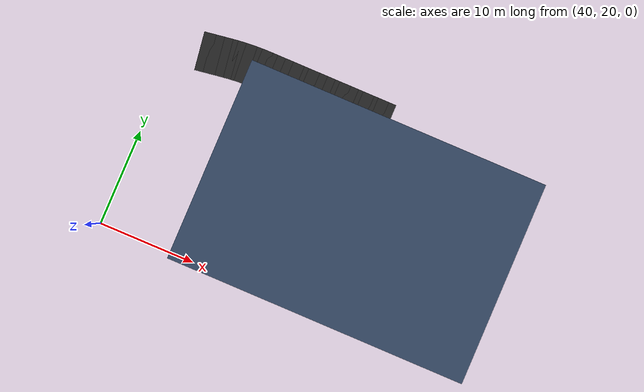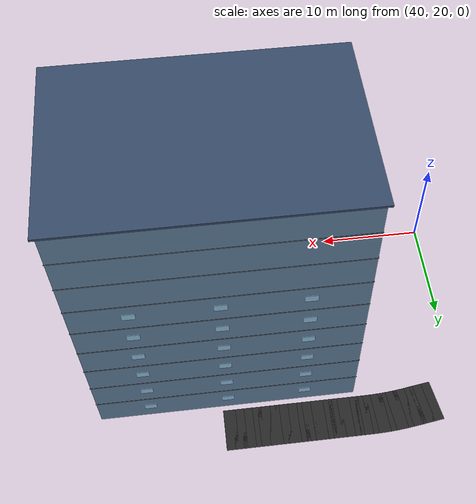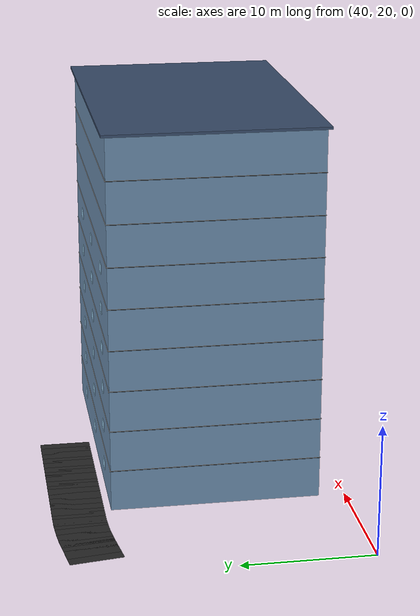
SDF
<sdf version="1.7">
 <world name="campus_delivery">
  <model name="campus_roads">
   <static>true</static>
   <link name="north_campus_loop_0102">
    <pose>62.000 40.500 0.002 0 0 3.141593</pose>
    <visual name="visual">
     <geometry><box><size>1.150 4.000 0.004</size></box></geometry>
     <material><ambient>0.160 0.160 0.160 1.000</ambient><diffuse>0.160 0.160 0.160 1.000</diffuse></material>
    </visual>
   </link>
   <link name="north_campus_loop_0103">
    <pose>61.200 40.500 0.002 0 0 3.141593</pose>
    <visual name="visual">
     <geometry><box><size>1.150 4.000 0.004</size></box></geometry>
     <material><ambient>0.160 0.160 0.160 1.000</ambient><diffuse>0.160 0.160 0.160 1.000</diffuse></material>
    </visual>
   </link>
   <link name="north_campus_loop_0104">
    <pose>60.400 40.500 0.002 0 0 3.141593</pose>
    <visual name="visual">
     <geometry><box><size>1.150 4.000 0.004</size></box></geometry>
     <material><ambient>0.160 0.160 0.160 1.000</ambient><diffuse>0.160 0.160 0.160 1.000</diffuse></material>
    </visual>
   </link>
   <link name="north_campus_loop_0105">
    <pose>59.577 40.500 0.002 0 0 3.141593</pose>
    <visual name="visual">
     <geometry><box><size>1.196 4.000 0.004</size></box></geometry>
     <material><ambient>0.160 0.160 0.160 1.000</ambient><diffuse>0.160 0.160 0.160 1.000</diffuse></material>
    </visual>
   </link>
   <link name="north_campus_loop_0106">
    <pose>58.731 40.500 0.002 0 0 3.141593</pose>
    <visual name="visual">
     <geometry><box><size>1.196 4.000 0.004</size></box></geometry>
     <material><ambient>0.160 0.160 0.160 1.000</ambient><diffuse>0.160 0.160 0.160 1.000</diffuse></material>
    </visual>
   </link>
   <link name="north_campus_loop_0107">
    <pose>57.885 40.500 0.002 0 0 3.141593</pose>
    <visual name="visual">
     <geometry><box><size>1.196 4.000 0.004</size></box></geometry>
     <material><ambient>0.160 0.160 0.160 1.000</ambient><diffuse>0.160 0.160 0.160 1.000</diffuse></material>
    </visual>
   </link>
   <link name="north_campus_loop_0108">
    <pose>57.038 40.500 0.002 0 0 3.141593</pose>
    <visual name="visual">
     <geometry><box><size>1.196 4.000 0.004</size></box></geometry>
     <material><ambient>0.160 0.160 0.160 1.000</ambient><diffuse>0.160 0.160 0.160 1.000</diffuse></material>
    </visual>
   </link>
   <link name="north_campus_loop_0109">
    <pose>56.192 40.500 0.002 0 0 3.141593</pose>
    <visual name="visual">
     <geometry><box><size>1.196 4.000 0.004</size></box></geometry>
     <material><ambient>0.160 0.160 0.160 1.000</ambient><diffuse>0.160 0.160 0.160 1.000</diffuse></material>
    </visual>
   </link>
   <link name="north_campus_loop_0110">
    <pose>55.346 40.500 0.002 0 0 3.141593</pose>
    <visual name="visual">
     <geometry><box><size>1.196 4.000 0.004</size></box></geometry>
     <material><ambient>0.160 0.160 0.160 1.000</ambient><diffuse>0.160 0.160 0.160 1.000</diffuse></material>
    </visual>
   </link>
   <link name="north_campus_loop_0111">
    <pose>54.500 40.500 0.002 0 0 3.141593</pose>
    <visual name="visual">
     <geometry><box><size>1.196 4.000 0.004</size></box></geometry>
     <material><ambient>0.160 0.160 0.160 1.000</ambient><diffuse>0.160 0.160 0.160 1.000</diffuse></material>
    </visual>
   </link>
   <link name="north_campus_loop_0112">
    <pose>53.654 40.500 0.002 0 0 3.141593</pose>
    <visual name="visual">
     <geometry><box><size>1.196 4.000 0.004</size></box></geometry>
     <material><ambient>0.160 0.160 0.160 1.000</ambient><diffuse>0.160 0.160 0.160 1.000</diffuse></material>
    </visual>
   </link>
   <link name="north_campus_loop_0113">
    <pose>52.808 40.500 0.002 0 0 3.141593</pose>
    <visual name="visual">
     <geometry><box><size>1.196 4.000 0.004</size></box></geometry>
     <material><ambient>0.160 0.160 0.160 1.000</ambient><diffuse>0.160 0.160 0.160 1.000</diffuse></material>
    </visual>
   </link>
   <link name="north_campus_loop_0114">
    <pose>51.962 40.500 0.002 0 0 3.141593</pose>
    <visual name="visual">
     <geometry><box><size>1.196 4.000 0.004</size></box></geometry>
     <material><ambient>0.160 0.160 0.160 1.000</ambient><diffuse>0.160 0.160 0.160 1.000</diffuse></material>
    </visual>
   </link>
   <link name="north_campus_loop_0115">
    <pose>51.115 40.500 0.002 0 0 3.141593</pose>
    <visual name="visual">
     <geometry><box><size>1.196 4.000 0.004</size></box></geometry>
     <material><ambient>0.160 0.160 0.160 1.000</ambient><diffuse>0.160 0.160 0.160 1.000</diffuse></material>
    </visual>
   </link>
   <link name="north_campus_loop_0116">
    <pose>50.269 40.500 0.002 0 0 3.141593</pose>
    <visual name="visual">
     <geometry><box><size>1.196 4.000 0.004</size></box></geometry>
     <material><ambient>0.160 0.160 0.160 1.000</ambient><diffuse>0.160 0.160 0.160 1.000</diffuse></material>
    </visual>
   </link>
   <link name="north_campus_loop_0117">
    <pose>49.423 40.500 0.002 0 0 3.141593</pose>
    <visual name="visual">
     <geometry><box><size>1.196 4.000 0.004</size></box></geometry>
     <material><ambient>0.160 0.160 0.160 1.000</ambient><diffuse>0.160 0.160 0.160 1.000</diffuse></material>
    </visual>
   </link>
   <link name="north_campus_loop_0118">
    <pose>48.600 40.494 0.002 0 0 -3.127029</pose>
    <visual name="visual">
     <geometry><box><size>1.149 4.000 0.004</size></box></geometry>
     <material><ambient>0.160 0.160 0.160 1.000</ambient><diffuse>0.160 0.160 0.160 1.000</diffuse></material>
    </visual>
   </link>
   <link name="north_campus_loop_0119">
    <pose>47.802 40.471 0.002 0 0 -3.097833</pose>
    <visual name="visual">
     <geometry><box><size>1.148 4.000 0.004</size></box></geometry>
     <material><ambient>0.160 0.160 0.160 1.000</ambient><diffuse>0.160 0.160 0.160 1.000</diffuse></material>
    </visual>
   </link>
   <link name="north_campus_loop_0120">
    <pose>47.006 40.424 0.002 0 0 -3.068587</pose>
    <visual name="visual">
     <geometry><box><size>1.148 4.000 0.004</size></box></geometry>
     <material><ambient>0.160 0.160 0.160 1.000</ambient><diffuse>0.160 0.160 0.160 1.000</diffuse></material>
    </visual>
   </link>
   <link name="north_campus_loop_0121">
    <pose>46.211 40.355 0.002 0 0 -3.039340</pose>
    <visual name="visual">
     <geometry><box><size>1.148 4.000 0.004</size></box></geometry>
     <material><ambient>0.160 0.160 0.160 1.000</ambient><diffuse>0.160 0.160 0.160 1.000</diffuse></material>
    </visual>
   </link>
   <link name="north_campus_loop_0122">
    <pose>45.417 40.261 0.002 0 0 -3.010144</pose>
    <visual name="visual">
     <geometry><box><size>1.149 4.000 0.004</size></box></geometry>
     <material><ambient>0.160 0.160 0.160 1.000</ambient><diffuse>0.160 0.160 0.160 1.000</diffuse></material>
    </visual>
   </link>
   <link name="north_campus_loop_0123">
    <pose>44.587 40.145 0.002 0 0 -2.995580</pose>
    <visual name="visual">
     <geometry><box><size>1.229 4.000 0.004</size></box></geometry>
     <material><ambient>0.160 0.160 0.160 1.000</ambient><diffuse>0.160 0.160 0.160 1.000</diffuse></material>
    </visual>
   </link>
   <link name="north_campus_loop_0124">
    <pose>43.717 40.017 0.002 0 0 -2.995580</pose>
    <visual name="visual">
     <geometry><box><size>1.229 4.000 0.004</size></box></geometry>
     <material><ambient>0.160 0.160 0.160 1.000</ambient><diffuse>0.160 0.160 0.160 1.000</diffuse></material>
    </visual>
   </link>
   <link name="north_campus_loop_0125">
    <pose>42.848 39.889 0.002 0 0 -2.995580</pose>
    <visual name="visual">
     <geometry><box><size>1.229 4.000 0.004</size></box></geometry>
     <material><ambient>0.160 0.160 0.160 1.000</ambient><diffuse>0.160 0.160 0.160 1.000</diffuse></material>
    </visual>
   </link>
  </model>
  <model name="laboratory_building">
   <static>true</static>
   <pose>62.000 30.000 0 0 0 0</pose>
   <link name="body">
    <visual name="body">
     <pose>0 0 14.400 0 0 0</pose>
     <geometry><box><size>24.000 16.000 28.800</size></box></geometry>
     <material><ambient>0.420 0.550 0.680 1.000</ambient><diffuse>0.420 0.550 0.680 1.000</diffuse></material>
    </visual>
    <collision name="body_collision">
     <pose>0 0 14.400 0 0 0</pose>
     <geometry><box><size>24.000 16.000 28.800</size></box></geometry>
    </collision>
    <visual name="roof">
     <pose>0 0 28.900 0 0 0</pose>
     <geometry><box><size>24.600 16.600 0.200</size></box></geometry>
     <material><ambient>0.220 0.300 0.420 1.000</ambient><diffuse>0.220 0.300 0.420 1.000</diffuse></material>
    </visual>
    <visual name="floor_sep_n_1">
     <pose>0 8.018 3.200 0 0 0</pose>
     <geometry><box><size>24.100 0.035 0.060</size></box></geometry>
     <material><ambient>0.080 0.080 0.080 1.000</ambient><diffuse>0.080 0.080 0.080 1.000</diffuse></material>
    </visual>
    <visual name="floor_sep_s_1">
     <pose>0 -8.018 3.200 0 0 0</pose>
     <geometry><box><size>24.100 0.035 0.060</size></box></geometry>
     <material><ambient>0.080 0.080 0.080 1.000</ambient><diffuse>0.080 0.080 0.080 1.000</diffuse></material>
    </visual>
    <visual name="floor_sep_e_1">
     <pose>12.018 0 3.200 0 0 0</pose>
     <geometry><box><size>0.035 16.100 0.060</size></box></geometry>
     <material><ambient>0.080 0.080 0.080 1.000</ambient><diffuse>0.080 0.080 0.080 1.000</diffuse></material>
    </visual>
    <visual name="floor_sep_w_1">
     <pose>-12.018 0 3.200 0 0 0</pose>
     <geometry><box><size>0.035 16.100 0.060</size></box></geometry>
     <material><ambient>0.080 0.080 0.080 1.000</ambient><diffuse>0.080 0.080 0.080 1.000</diffuse></material>
    </visual>
    <visual name="floor_sep_n_2">
     <pose>0 8.018 6.400 0 0 0</pose>
     <geometry><box><size>24.100 0.035 0.060</size></box></geometry>
     <material><ambient>0.080 0.080 0.080 1.000</ambient><diffuse>0.080 0.080 0.080 1.000</diffuse></material>
    </visual>
    <visual name="floor_sep_s_2">
     <pose>0 -8.018 6.400 0 0 0</pose>
     <geometry><box><size>24.100 0.035 0.060</size></box></geometry>
     <material><ambient>0.080 0.080 0.080 1.000</ambient><diffuse>0.080 0.080 0.080 1.000</diffuse></material>
    </visual>
    <visual name="floor_sep_e_2">
     <pose>12.018 0 6.400 0 0 0</pose>
     <geometry><box><size>0.035 16.100 0.060</size></box></geometry>
     <material><ambient>0.080 0.080 0.080 1.000</ambient><diffuse>0.080 0.080 0.080 1.000</diffuse></material>
    </visual>
    <visual name="floor_sep_w_2">
     <pose>-12.018 0 6.400 0 0 0</pose>
     <geometry><box><size>0.035 16.100 0.060</size></box></geometry>
     <material><ambient>0.080 0.080 0.080 1.000</ambient><diffuse>0.080 0.080 0.080 1.000</diffuse></material>
    </visual>
    <visual name="floor_sep_n_3">
     <pose>0 8.018 9.600 0 0 0</pose>
     <geometry><box><size>24.100 0.035 0.060</size></box></geometry>
     <material><ambient>0.080 0.080 0.080 1.000</ambient><diffuse>0.080 0.080 0.080 1.000</diffuse></material>
    </visual>
    <visual name="floor_sep_s_3">
     <pose>0 -8.018 9.600 0 0 0</pose>
     <geometry><box><size>24.100 0.035 0.060</size></box></geometry>
     <material><ambient>0.080 0.080 0.080 1.000</ambient><diffuse>0.080 0.080 0.080 1.000</diffuse></material>
    </visual>
    <visual name="floor_sep_e_3">
     <pose>12.018 0 9.600 0 0 0</pose>
     <geometry><box><size>0.035 16.100 0.060</size></box></geometry>
     <material><ambient>0.080 0.080 0.080 1.000</ambient><diffuse>0.080 0.080 0.080 1.000</diffuse></material>
    </visual>
    <visual name="floor_sep_w_3">
     <pose>-12.018 0 9.600 0 0 0</pose>
     <geometry><box><size>0.035 16.100 0.060</size></box></geometry>
     <material><ambient>0.080 0.080 0.080 1.000</ambient><diffuse>0.080 0.080 0.080 1.000</diffuse></material>
    </visual>
    <visual name="floor_sep_n_4">
     <pose>0 8.018 12.800 0 0 0</pose>
     <geometry><box><size>24.100 0.035 0.060</size></box></geometry>
     <material><ambient>0.080 0.080 0.080 1.000</ambient><diffuse>0.080 0.080 0.080 1.000</diffuse></material>
    </visual>
    <visual name="floor_sep_s_4">
     <pose>0 -8.018 12.800 0 0 0</pose>
     <geometry><box><size>24.100 0.035 0.060</size></box></geometry>
     <material><ambient>0.080 0.080 0.080 1.000</ambient><diffuse>0.080 0.080 0.080 1.000</diffuse></material>
    </visual>
    <visual name="floor_sep_e_4">
     <pose>12.018 0 12.800 0 0 0</pose>
     <geometry><box><size>0.035 16.100 0.060</size></box></geometry>
     <material><ambient>0.080 0.080 0.080 1.000</ambient><diffuse>0.080 0.080 0.080 1.000</diffuse></material>
    </visual>
    <visual name="floor_sep_w_4">
     <pose>-12.018 0 12.800 0 0 0</pose>
     <geometry><box><size>0.035 16.100 0.060</size></box></geometry>
     <material><ambient>0.080 0.080 0.080 1.000</ambient><diffuse>0.080 0.080 0.080 1.000</diffuse></material>
    </visual>
    <visual name="floor_sep_n_5">
     <pose>0 8.018 16.000 0 0 0</pose>
     <geometry><box><size>24.100 0.035 0.060</size></box></geometry>
     <material><ambient>0.080 0.080 0.080 1.000</ambient><diffuse>0.080 0.080 0.080 1.000</diffuse></material>
    </visual>
    <visual name="floor_sep_s_5">
     <pose>0 -8.018 16.000 0 0 0</pose>
     <geometry><box><size>24.100 0.035 0.060</size></box></geometry>
     <material><ambient>0.080 0.080 0.080 1.000</ambient><diffuse>0.080 0.080 0.080 1.000</diffuse></material>
    </visual>
    <visual name="floor_sep_e_5">
     <pose>12.018 0 16.000 0 0 0</pose>
     <geometry><box><size>0.035 16.100 0.060</size></box></geometry>
     <material><ambient>0.080 0.080 0.080 1.000</ambient><diffuse>0.080 0.080 0.080 1.000</diffuse></material>
    </visual>
    <visual name="floor_sep_w_5">
     <pose>-12.018 0 16.000 0 0 0</pose>
     <geometry><box><size>0.035 16.100 0.060</size></box></geometry>
     <material><ambient>0.080 0.080 0.080 1.000</ambient><diffuse>0.080 0.080 0.080 1.000</diffuse></material>
    </visual>
    <visual name="floor_sep_n_6">
     <pose>0 8.018 19.200 0 0 0</pose>
     <geometry><box><size>24.100 0.035 0.060</size></box></geometry>
     <material><ambient>0.080 0.080 0.080 1.000</ambient><diffuse>0.080 0.080 0.080 1.000</diffuse></material>
    </visual>
    <visual name="floor_sep_s_6">
     <pose>0 -8.018 19.200 0 0 0</pose>
     <geometry><box><size>24.100 0.035 0.060</size></box></geometry>
     <material><ambient>0.080 0.080 0.080 1.000</ambient><diffuse>0.080 0.080 0.080 1.000</diffuse></material>
    </visual>
    <visual name="floor_sep_e_6">
     <pose>12.018 0 19.200 0 0 0</pose>
     <geometry><box><size>0.035 16.100 0.060</size></box></geometry>
     <material><ambient>0.080 0.080 0.080 1.000</ambient><diffuse>0.080 0.080 0.080 1.000</diffuse></material>
    </visual>
    <visual name="floor_sep_w_6">
     <pose>-12.018 0 19.200 0 0 0</pose>
     <geometry><box><size>0.035 16.100 0.060</size></box></geometry>
     <material><ambient>0.080 0.080 0.080 1.000</ambient><diffuse>0.080 0.080 0.080 1.000</diffuse></material>
    </visual>
    <visual name="floor_sep_n_7">
     <pose>0 8.018 22.400 0 0 0</pose>
     <geometry><box><size>24.100 0.035 0.060</size></box></geometry>
     <material><ambient>0.080 0.080 0.080 1.000</ambient><diffuse>0.080 0.080 0.080 1.000</diffuse></material>
    </visual>
    <visual name="floor_sep_s_7">
     <pose>0 -8.018 22.400 0 0 0</pose>
     <geometry><box><size>24.100 0.035 0.060</size></box></geometry>
     <material><ambient>0.080 0.080 0.080 1.000</ambient><diffuse>0.080 0.080 0.080 1.000</diffuse></material>
    </visual>
    <visual name="floor_sep_e_7">
     <pose>12.018 0 22.400 0 0 0</pose>
     <geometry><box><size>0.035 16.100 0.060</size></box></geometry>
     <material><ambient>0.080 0.080 0.080 1.000</ambient><diffuse>0.080 0.080 0.080 1.000</diffuse></material>
    </visual>
    <visual name="floor_sep_w_7">
     <pose>-12.018 0 22.400 0 0 0</pose>
     <geometry><box><size>0.035 16.100 0.060</size></box></geometry>
     <material><ambient>0.080 0.080 0.080 1.000</ambient><diffuse>0.080 0.080 0.080 1.000</diffuse></material>
    </visual>
    <visual name="floor_sep_n_8">
     <pose>0 8.018 25.600 0 0 0</pose>
     <geometry><box><size>24.100 0.035 0.060</size></box></geometry>
     <material><ambient>0.080 0.080 0.080 1.000</ambient><diffuse>0.080 0.080 0.080 1.000</diffuse></material>
    </visual>
    <visual name="floor_sep_s_8">
     <pose>0 -8.018 25.600 0 0 0</pose>
     <geometry><box><size>24.100 0.035 0.060</size></box></geometry>
     <material><ambient>0.080 0.080 0.080 1.000</ambient><diffuse>0.080 0.080 0.080 1.000</diffuse></material>
    </visual>
    <visual name="floor_sep_e_8">
     <pose>12.018 0 25.600 0 0 0</pose>
     <geometry><box><size>0.035 16.100 0.060</size></box></geometry>
     <material><ambient>0.080 0.080 0.080 1.000</ambient><diffuse>0.080 0.080 0.080 1.000</diffuse></material>
    </visual>
    <visual name="floor_sep_w_8">
     <pose>-12.018 0 25.600 0 0 0</pose>
     <geometry><box><size>0.035 16.100 0.060</size></box></geometry>
     <material><ambient>0.080 0.080 0.080 1.000</ambient><diffuse>0.080 0.080 0.080 1.000</diffuse></material>
    </visual>
    <visual name="front_door">
     <pose>0 -8.012 1.2 0 0 0</pose>
     <geometry><box><size>3.000 0.050 2.400</size></box></geometry>
     <material><ambient>0.080 0.060 0.040 1.000</ambient><diffuse>0.080 0.060 0.040 1.000</diffuse></material>
    </visual>
    <visual name="win_n_1_-7.2">
     <pose>-7.200 8.020 1.700 0 0 0</pose>
     <geometry><box><size>1.100 0.035 0.750</size></box></geometry>
     <material><ambient>0.620 0.820 0.950 1.000</ambient><diffuse>0.620 0.820 0.950 1.000</diffuse></material>
    </visual>
    <visual name="win_s_1_-7.2">
     <pose>-7.200 -8.020 1.700 0 0 0</pose>
     <geometry><box><size>1.100 0.035 0.750</size></box></geometry>
     <material><ambient>0.620 0.820 0.950 1.000</ambient><diffuse>0.620 0.820 0.950 1.000</diffuse></material>
    </visual>
    <visual name="win_n_1_0.0">
     <pose>0.000 8.020 1.700 0 0 0</pose>
     <geometry><box><size>1.100 0.035 0.750</size></box></geometry>
     <material><ambient>0.620 0.820 0.950 1.000</ambient><diffuse>0.620 0.820 0.950 1.000</diffuse></material>
    </visual>
    <visual name="win_s_1_0.0">
     <pose>0.000 -8.020 1.700 0 0 0</pose>
     <geometry><box><size>1.100 0.035 0.750</size></box></geometry>
     <material><ambient>0.620 0.820 0.950 1.000</ambient><diffuse>0.620 0.820 0.950 1.000</diffuse></material>
    </visual>
    <visual name="win_n_1_7.2">
     <pose>7.200 8.020 1.700 0 0 0</pose>
     <geometry><box><size>1.100 0.035 0.750</size></box></geometry>
     <material><ambient>0.620 0.820 0.950 1.000</ambient><diffuse>0.620 0.820 0.950 1.000</diffuse></material>
    </visual>
    <visual name="win_s_1_7.2">
     <pose>7.200 -8.020 1.700 0 0 0</pose>
     <geometry><box><size>1.100 0.035 0.750</size></box></geometry>
     <material><ambient>0.620 0.820 0.950 1.000</ambient><diffuse>0.620 0.820 0.950 1.000</diffuse></material>
    </visual>
    <visual name="win_n_2_-7.2">
     <pose>-7.200 8.020 4.900 0 0 0</pose>
     <geometry><box><size>1.100 0.035 0.750</size></box></geometry>
     <material><ambient>0.620 0.820 0.950 1.000</ambient><diffuse>0.620 0.820 0.950 1.000</diffuse></material>
    </visual>
    <visual name="win_s_2_-7.2">
     <pose>-7.200 -8.020 4.900 0 0 0</pose>
     <geometry><box><size>1.100 0.035 0.750</size></box></geometry>
     <material><ambient>0.620 0.820 0.950 1.000</ambient><diffuse>0.620 0.820 0.950 1.000</diffuse></material>
    </visual>
    <visual name="win_n_2_0.0">
     <pose>0.000 8.020 4.900 0 0 0</pose>
     <geometry><box><size>1.100 0.035 0.750</size></box></geometry>
     <material><ambient>0.620 0.820 0.950 1.000</ambient><diffuse>0.620 0.820 0.950 1.000</diffuse></material>
    </visual>
    <visual name="win_s_2_0.0">
     <pose>0.000 -8.020 4.900 0 0 0</pose>
     <geometry><box><size>1.100 0.035 0.750</size></box></geometry>
     <material><ambient>0.620 0.820 0.950 1.000</ambient><diffuse>0.620 0.820 0.950 1.000</diffuse></material>
    </visual>
    <visual name="win_n_2_7.2">
     <pose>7.200 8.020 4.900 0 0 0</pose>
     <geometry><box><size>1.100 0.035 0.750</size></box></geometry>
     <material><ambient>0.620 0.820 0.950 1.000</ambient><diffuse>0.620 0.820 0.950 1.000</diffuse></material>
    </visual>
    <visual name="win_s_2_7.2">
     <pose>7.200 -8.020 4.900 0 0 0</pose>
     <geometry><box><size>1.100 0.035 0.750</size></box></geometry>
     <material><ambient>0.620 0.820 0.950 1.000</ambient><diffuse>0.620 0.820 0.950 1.000</diffuse></material>
    </visual>
    <visual name="win_n_3_-7.2">
     <pose>-7.200 8.020 8.100 0 0 0</pose>
     <geometry><box><size>1.100 0.035 0.750</size></box></geometry>
     <material><ambient>0.620 0.820 0.950 1.000</ambient><diffuse>0.620 0.820 0.950 1.000</diffuse></material>
    </visual>
    <visual name="win_s_3_-7.2">
     <pose>-7.200 -8.020 8.100 0 0 0</pose>
     <geometry><box><size>1.100 0.035 0.750</size></box></geometry>
     <material><ambient>0.620 0.820 0.950 1.000</ambient><diffuse>0.620 0.820 0.950 1.000</diffuse></material>
    </visual>
    <visual name="win_n_3_0.0">
     <pose>0.000 8.020 8.100 0 0 0</pose>
     <geometry><box><size>1.100 0.035 0.750</size></box></geometry>
     <material><ambient>0.620 0.820 0.950 1.000</ambient><diffuse>0.620 0.820 0.950 1.000</diffuse></material>
    </visual>
    <visual name="win_s_3_0.0">
     <pose>0.000 -8.020 8.100 0 0 0</pose>
     <geometry><box><size>1.100 0.035 0.750</size></box></geometry>
     <material><ambient>0.620 0.820 0.950 1.000</ambient><diffuse>0.620 0.820 0.950 1.000</diffuse></material>
    </visual>
    <visual name="win_n_3_7.2">
     <pose>7.200 8.020 8.100 0 0 0</pose>
     <geometry><box><size>1.100 0.035 0.750</size></box></geometry>
     <material><ambient>0.620 0.820 0.950 1.000</ambient><diffuse>0.620 0.820 0.950 1.000</diffuse></material>
    </visual>
    <visual name="win_s_3_7.2">
     <pose>7.200 -8.020 8.100 0 0 0</pose>
     <geometry><box><size>1.100 0.035 0.750</size></box></geometry>
     <material><ambient>0.620 0.820 0.950 1.000</ambient><diffuse>0.620 0.820 0.950 1.000</diffuse></material>
    </visual>
    <visual name="win_n_4_-7.2">
     <pose>-7.200 8.020 11.300 0 0 0</pose>
     <geometry><box><size>1.100 0.035 0.750</size></box></geometry>
     <material><ambient>0.620 0.820 0.950 1.000</ambient><diffuse>0.620 0.820 0.950 1.000</diffuse></material>
    </visual>
    <visual name="win_s_4_-7.2">
     <pose>-7.200 -8.020 11.300 0 0 0</pose>
     <geometry><box><size>1.100 0.035 0.750</size></box></geometry>
     <material><ambient>0.620 0.820 0.950 1.000</ambient><diffuse>0.620 0.820 0.950 1.000</diffuse></material>
    </visual>
    <visual name="win_n_4_0.0">
     <pose>0.000 8.020 11.300 0 0 0</pose>
     <geometry><box><size>1.100 0.035 0.750</size></box></geometry>
     <material><ambient>0.620 0.820 0.950 1.000</ambient><diffuse>0.620 0.820 0.950 1.000</diffuse></material>
    </visual>
    <visual name="win_s_4_0.0">
     <pose>0.000 -8.020 11.300 0 0 0</pose>
     <geometry><box><size>1.100 0.035 0.750</size></box></geometry>
     <material><ambient>0.620 0.820 0.950 1.000</ambient><diffuse>0.620 0.820 0.950 1.000</diffuse></material>
    </visual>
    <visual name="win_n_4_7.2">
     <pose>7.200 8.020 11.300 0 0 0</pose>
     <geometry><box><size>1.100 0.035 0.750</size></box></geometry>
     <material><ambient>0.620 0.820 0.950 1.000</ambient><diffuse>0.620 0.820 0.950 1.000</diffuse></material>
    </visual>
    <visual name="win_s_4_7.2">
     <pose>7.200 -8.020 11.300 0 0 0</pose>
     <geometry><box><size>1.100 0.035 0.750</size></box></geometry>
     <material><ambient>0.620 0.820 0.950 1.000</ambient><diffuse>0.620 0.820 0.950 1.000</diffuse></material>
    </visual>
    <visual name="win_n_5_-7.2">
     <pose>-7.200 8.020 14.500 0 0 0</pose>
     <geometry><box><size>1.100 0.035 0.750</size></box></geometry>
     <material><ambient>0.620 0.820 0.950 1.000</ambient><diffuse>0.620 0.820 0.950 1.000</diffuse></material>
    </visual>
    <visual name="win_s_5_-7.2">
     <pose>-7.200 -8.020 14.500 0 0 0</pose>
     <geometry><box><size>1.100 0.035 0.750</size></box></geometry>
     <material><ambient>0.620 0.820 0.950 1.000</ambient><diffuse>0.620 0.820 0.950 1.000</diffuse></material>
    </visual>
    <visual name="win_n_5_0.0">
     <pose>0.000 8.020 14.500 0 0 0</pose>
     <geometry><box><size>1.100 0.035 0.750</size></box></geometry>
     <material><ambient>0.620 0.820 0.950 1.000</ambient><diffuse>0.620 0.820 0.950 1.000</diffuse></material>
    </visual>
    <visual name="win_s_5_0.0">
     <pose>0.000 -8.020 14.500 0 0 0</pose>
     <geometry><box><size>1.100 0.035 0.750</size></box></geometry>
     <material><ambient>0.620 0.820 0.950 1.000</ambient><diffuse>0.620 0.820 0.950 1.000</diffuse></material>
    </visual>
    <visual name="win_n_5_7.2">
     <pose>7.200 8.020 14.500 0 0 0</pose>
     <geometry><box><size>1.100 0.035 0.750</size></box></geometry>
     <material><ambient>0.620 0.820 0.950 1.000</ambient><diffuse>0.620 0.820 0.950 1.000</diffuse></material>
    </visual>
    <visual name="win_s_5_7.2">
     <pose>7.200 -8.020 14.500 0 0 0</pose>
     <geometry><box><size>1.100 0.035 0.750</size></box></geometry>
     <material><ambient>0.620 0.820 0.950 1.000</ambient><diffuse>0.620 0.820 0.950 1.000</diffuse></material>
    </visual>
    <visual name="win_n_6_-7.2">
     <pose>-7.200 8.020 17.700 0 0 0</pose>
     <geometry><box><size>1.100 0.035 0.750</size></box></geometry>
     <material><ambient>0.620 0.820 0.950 1.000</ambient><diffuse>0.620 0.820 0.950 1.000</diffuse></material>
    </visual>
    <visual name="win_s_6_-7.2">
     <pose>-7.200 -8.020 17.700 0 0 0</pose>
     <geometry><box><size>1.100 0.035 0.750</size></box></geometry>
     <material><ambient>0.620 0.820 0.950 1.000</ambient><diffuse>0.620 0.820 0.950 1.000</diffuse></material>
    </visual>
    <visual name="win_n_6_0.0">
     <pose>0.000 8.020 17.700 0 0 0</pose>
     <geometry><box><size>1.100 0.035 0.750</size></box></geometry>
     <material><ambient>0.620 0.820 0.950 1.000</ambient><diffuse>0.620 0.820 0.950 1.000</diffuse></material>
    </visual>
    <visual name="win_s_6_0.0">
     <pose>0.000 -8.020 17.700 0 0 0</pose>
     <geometry><box><size>1.100 0.035 0.750</size></box></geometry>
     <material><ambient>0.620 0.820 0.950 1.000</ambient><diffuse>0.620 0.820 0.950 1.000</diffuse></material>
    </visual>
    <visual name="win_n_6_7.2">
     <pose>7.200 8.020 17.700 0 0 0</pose>
     <geometry><box><size>1.100 0.035 0.750</size></box></geometry>
     <material><ambient>0.620 0.820 0.950 1.000</ambient><diffuse>0.620 0.820 0.950 1.000</diffuse></material>
    </visual>
    <visual name="win_s_6_7.2">
     <pose>7.200 -8.020 17.700 0 0 0</pose>
     <geometry><box><size>1.100 0.035 0.750</size></box></geometry>
     <material><ambient>0.620 0.820 0.950 1.000</ambient><diffuse>0.620 0.820 0.950 1.000</diffuse></material>
    </visual>
   </link>
  </model>
 </world>
</sdf>
